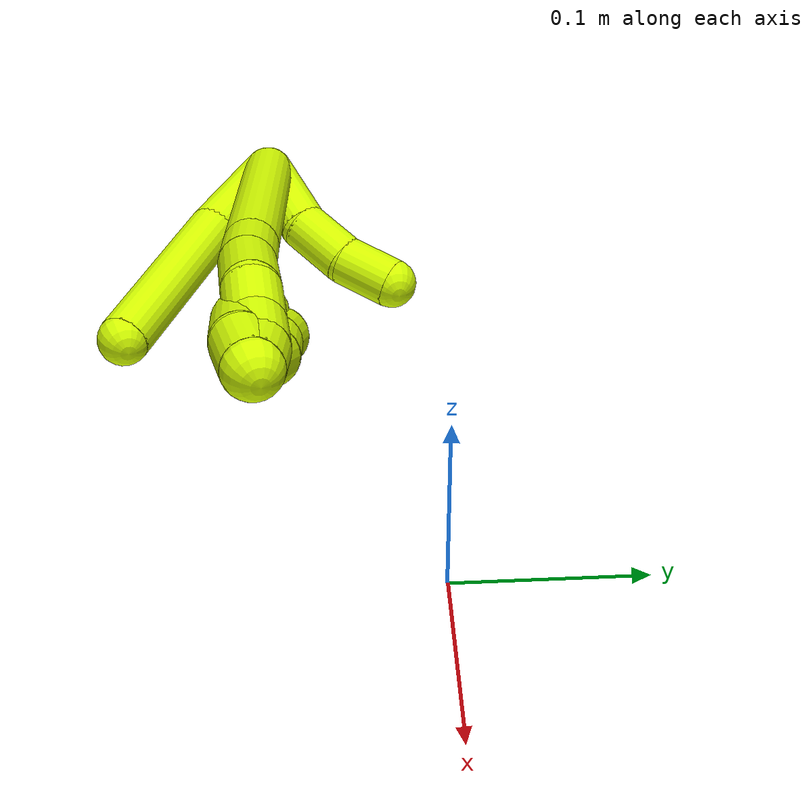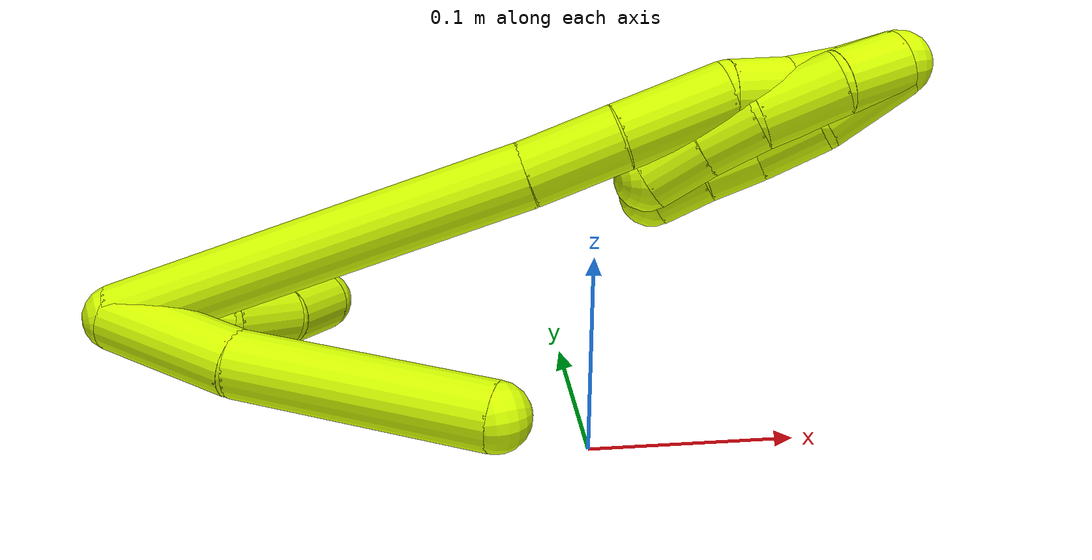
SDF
<sdf version="1.7">
 <world name="default">
  <model name="15">
   <static>0</static>
   <link name="15">
    <collision name="collision-cylinder-e_1_2_8">
     <pose>-0.003831 -0.019727 -0.017833 2.30582 -0.143072 -0.319997</pose>
     <geometry><cylinder><radius>0.0125</radius><length>0.053734</length></cylinder></geometry>
     <surface>
      <friction><ode><mu>1.16</mu><mu2>1.16</mu2><slip1>0</slip1><slip2>0</slip2></ode></friction>
      <contact><ode><kp>1e+06</kp><kd>1</kd><max_vel>0</max_vel><min_depth>0.001</min_depth></ode></contact>
     </surface>
    </collision>
    <visual name="visual-cylinder-e_1_2_8">
     <pose>-0.003831 -0.019727 -0.017833 2.30582 -0.143072 -0.319997</pose>
     <geometry><cylinder><radius>0.0125</radius><length>0.053734</length></cylinder></geometry>
     <material><ambient>0.835294 1 0 1</ambient></material>
    </visual>
    <collision name="collision-cylinder-e_2_8_6">
     <pose>-0.010407 -0.070342 -0.072478 2.44347 -0.057074 -0.156534</pose>
     <geometry><cylinder><radius>0.0125</radius><length>0.096266</length></cylinder></geometry>
     <surface>
      <friction><ode><mu>1.16</mu><mu2>1.16</mu2><slip1>0</slip1><slip2>0</slip2></ode></friction>
      <contact><ode><kp>1e+06</kp><kd>1</kd><max_vel>0</max_vel><min_depth>0.001</min_depth></ode></contact>
     </surface>
    </collision>
    <visual name="visual-cylinder-e_2_8_6">
     <pose>-0.010407 -0.070342 -0.072478 2.44347 -0.057074 -0.156534</pose>
     <geometry><cylinder><radius>0.0125</radius><length>0.096266</length></cylinder></geometry>
     <material><ambient>0.835294 1 0 1</ambient></material>
    </visual>
    <collision name="collision-cylinder-e_1_2_9">
     <pose>-0.006498 0.003924 -0.019189 -2.93988 -0.32032 2.0223</pose>
     <geometry><cylinder><radius>0.0125</radius><length>0.041272</length></cylinder></geometry>
     <surface>
      <friction><ode><mu>1.16</mu><mu2>1.16</mu2><slip1>0</slip1><slip2>0</slip2></ode></friction>
      <contact><ode><kp>1e+06</kp><kd>1</kd><max_vel>0</max_vel><min_depth>0.001</min_depth></ode></contact>
     </surface>
    </collision>
    <visual name="visual-cylinder-e_1_2_9">
     <pose>-0.006498 0.003924 -0.019189 -2.93988 -0.32032 2.0223</pose>
     <geometry><cylinder><radius>0.0125</radius><length>0.041272</length></cylinder></geometry>
     <material><ambient>0.835294 1 0 1</ambient></material>
    </visual>
    <collision name="collision-cylinder-e_2_9_10">
     <pose>-0.016975 0.015023 -0.051475 -2.64043 -0.260471 0.945929</pose>
     <geometry><cylinder><radius>0.0125</radius><length>0.030909</length></cylinder></geometry>
     <surface>
      <friction><ode><mu>1.16</mu><mu2>1.16</mu2><slip1>0</slip1><slip2>0</slip2></ode></friction>
      <contact><ode><kp>1e+06</kp><kd>1</kd><max_vel>0</max_vel><min_depth>0.001</min_depth></ode></contact>
     </surface>
    </collision>
    <visual name="visual-cylinder-e_2_9_10">
     <pose>-0.016975 0.015023 -0.051475 -2.64043 -0.260471 0.945929</pose>
     <geometry><cylinder><radius>0.0125</radius><length>0.030909</length></cylinder></geometry>
     <material><ambient>0.835294 1 0 1</ambient></material>
    </visual>
    <collision name="collision-cylinder-e_3_10_5">
     <pose>-0.023432 0.031384 -0.074718 -2.40576 -0.178971 0.457398</pose>
     <geometry><cylinder><radius>0.0125</radius><length>0.027819</length></cylinder></geometry>
     <surface>
      <friction><ode><mu>1.16</mu><mu2>1.16</mu2><slip1>0</slip1><slip2>0</slip2></ode></friction>
      <contact><ode><kp>1e+06</kp><kd>1</kd><max_vel>0</max_vel><min_depth>0.001</min_depth></ode></contact>
     </surface>
    </collision>
    <visual name="visual-cylinder-e_3_10_5">
     <pose>-0.023432 0.031384 -0.074718 -2.40576 -0.178971 0.457398</pose>
     <geometry><cylinder><radius>0.0125</radius><length>0.027819</length></cylinder></geometry>
     <material><ambient>0.835294 1 0 1</ambient></material>
    </visual>
    <collision name="collision-cylinder-e_1_2_11">
     <pose>0.024659 -0.023136 -0.072015 2.83074 0.315134 1.5847</pose>
     <geometry><cylinder><radius>0.0125</radius><length>0.159116</length></cylinder></geometry>
     <surface>
      <friction><ode><mu>1.16</mu><mu2>1.16</mu2><slip1>0</slip1><slip2>0</slip2></ode></friction>
      <contact><ode><kp>1e+06</kp><kd>1</kd><max_vel>0</max_vel><min_depth>0.001</min_depth></ode></contact>
     </surface>
    </collision>
    <visual name="visual-cylinder-e_1_2_11">
     <pose>0.024659 -0.023136 -0.072015 2.83074 0.315134 1.5847</pose>
     <geometry><cylinder><radius>0.0125</radius><length>0.159116</length></cylinder></geometry>
     <material><ambient>0.835294 1 0 1</ambient></material>
    </visual>
    <collision name="collision-cylinder-e_2_11_12">
     <pose>0.055649 -0.05105 -0.160212 2.8545 0.359044 1.7964</pose>
     <geometry><cylinder><radius>0.0125</radius><length>0.036043</length></cylinder></geometry>
     <surface>
      <friction><ode><mu>1.16</mu><mu2>1.16</mu2><slip1>0</slip1><slip2>0</slip2></ode></friction>
      <contact><ode><kp>1e+06</kp><kd>1</kd><max_vel>0</max_vel><min_depth>0.001</min_depth></ode></contact>
     </surface>
    </collision>
    <visual name="visual-cylinder-e_2_11_12">
     <pose>0.055649 -0.05105 -0.160212 2.8545 0.359044 1.7964</pose>
     <geometry><cylinder><radius>0.0125</radius><length>0.036043</length></cylinder></geometry>
     <material><ambient>0.835294 1 0 1</ambient></material>
    </visual>
    <collision name="collision-cylinder-e_3_12_13">
     <pose>0.068627 -0.059862 -0.195578 2.93431 0.326819 2.01601</pose>
     <geometry><cylinder><radius>0.0125</radius><length>0.0414</length></cylinder></geometry>
     <surface>
      <friction><ode><mu>1.16</mu><mu2>1.16</mu2><slip1>0</slip1><slip2>0</slip2></ode></friction>
      <contact><ode><kp>1e+06</kp><kd>1</kd><max_vel>0</max_vel><min_depth>0.001</min_depth></ode></contact>
     </surface>
    </collision>
    <visual name="visual-cylinder-e_3_12_13">
     <pose>0.068627 -0.059862 -0.195578 2.93431 0.326819 2.01601</pose>
     <geometry><cylinder><radius>0.0125</radius><length>0.0414</length></cylinder></geometry>
     <material><ambient>0.835294 1 0 1</ambient></material>
    </visual>
    <collision name="collision-cylinder-e_4_13_14">
     <pose>0.075089 -0.066086 -0.225962 2.94851 -0.016038 -0.165232</pose>
     <geometry><cylinder><radius>0.0125</radius><length>0.022826</length></cylinder></geometry>
     <surface>
      <friction><ode><mu>1.16</mu><mu2>1.16</mu2><slip1>0</slip1><slip2>0</slip2></ode></friction>
      <contact><ode><kp>1e+06</kp><kd>1</kd><max_vel>0</max_vel><min_depth>0.001</min_depth></ode></contact>
     </surface>
    </collision>
    <visual name="visual-cylinder-e_4_13_14">
     <pose>0.075089 -0.066086 -0.225962 2.94851 -0.016038 -0.165232</pose>
     <geometry><cylinder><radius>0.0125</radius><length>0.022826</length></cylinder></geometry>
     <material><ambient>0.835294 1 0 1</ambient></material>
    </visual>
    <collision name="collision-cylinder-e_5_14_15">
     <pose>0.076183 -0.070251 -0.24699 2.94333 0.126685 1.13543</pose>
     <geometry><cylinder><radius>0.0125</radius><length>0.020212</length></cylinder></geometry>
     <surface>
      <friction><ode><mu>1.16</mu><mu2>1.16</mu2><slip1>0</slip1><slip2>0</slip2></ode></friction>
      <contact><ode><kp>1e+06</kp><kd>1</kd><max_vel>0</max_vel><min_depth>0.001</min_depth></ode></contact>
     </surface>
    </collision>
    <visual name="visual-cylinder-e_5_14_15">
     <pose>0.076183 -0.070251 -0.24699 2.94333 0.126685 1.13543</pose>
     <geometry><cylinder><radius>0.0125</radius><length>0.020212</length></cylinder></geometry>
     <material><ambient>0.835294 1 0 1</ambient></material>
    </visual>
    <collision name="collision-cylinder-e_6_15_1">
     <pose>0.080333 -0.075757 -0.265948 2.77243 0.285439 1.3119</pose>
     <geometry><cylinder><radius>0.0125</radius><length>0.020403</length></cylinder></geometry>
     <surface>
      <friction><ode><mu>1.16</mu><mu2>1.16</mu2><slip1>0</slip1><slip2>0</slip2></ode></friction>
      <contact><ode><kp>1e+06</kp><kd>1</kd><max_vel>0</max_vel><min_depth>0.001</min_depth></ode></contact>
     </surface>
    </collision>
    <visual name="visual-cylinder-e_6_15_1">
     <pose>0.080333 -0.075757 -0.265948 2.77243 0.285439 1.3119</pose>
     <geometry><cylinder><radius>0.0125</radius><length>0.020403</length></cylinder></geometry>
     <material><ambient>0.835294 1 0 1</ambient></material>
    </visual>
    <collision name="collision-cylinder-e_1_1_16">
     <pose>0.080763 -0.078533 -0.263351 -0.064407 -0.204895 0.006624</pose>
     <geometry><cylinder><radius>0.0125</radius><length>0.024004</length></cylinder></geometry>
     <surface>
      <friction><ode><mu>1.16</mu><mu2>1.16</mu2><slip1>0</slip1><slip2>0</slip2></ode></friction>
      <contact><ode><kp>1e+06</kp><kd>1</kd><max_vel>0</max_vel><min_depth>0.001</min_depth></ode></contact>
     </surface>
    </collision>
    <visual name="visual-cylinder-e_1_1_16">
     <pose>0.080763 -0.078533 -0.263351 -0.064407 -0.204895 0.006624</pose>
     <geometry><cylinder><radius>0.0125</radius><length>0.024004</length></cylinder></geometry>
     <material><ambient>0.835294 1 0 1</ambient></material>
    </visual>
    <collision name="collision-cylinder-e_2_16_17">
     <pose>0.072841 -0.074033 -0.237439 -0.258066 -0.357506 0.04688</pose>
     <geometry><cylinder><radius>0.0125</radius><length>0.031324</length></cylinder></geometry>
     <surface>
      <friction><ode><mu>1.16</mu><mu2>1.16</mu2><slip1>0</slip1><slip2>0</slip2></ode></friction>
      <contact><ode><kp>1e+06</kp><kd>1</kd><max_vel>0</max_vel><min_depth>0.001</min_depth></ode></contact>
     </surface>
    </collision>
    <visual name="visual-cylinder-e_2_16_17">
     <pose>0.072841 -0.074033 -0.237439 -0.258066 -0.357506 0.04688</pose>
     <geometry><cylinder><radius>0.0125</radius><length>0.031324</length></cylinder></geometry>
     <material><ambient>0.835294 1 0 1</ambient></material>
    </visual>
    <collision name="collision-cylinder-e_3_17_18">
     <pose>0.062081 -0.066242 -0.214445 -0.430622 -0.498732 0.111277</pose>
     <geometry><cylinder><radius>0.0125</radius><length>0.022075</length></cylinder></geometry>
     <surface>
      <friction><ode><mu>1.16</mu><mu2>1.16</mu2><slip1>0</slip1><slip2>0</slip2></ode></friction>
      <contact><ode><kp>1e+06</kp><kd>1</kd><max_vel>0</max_vel><min_depth>0.001</min_depth></ode></contact>
     </surface>
    </collision>
    <visual name="visual-cylinder-e_3_17_18">
     <pose>0.062081 -0.066242 -0.214445 -0.430622 -0.498732 0.111277</pose>
     <geometry><cylinder><radius>0.0125</radius><length>0.022075</length></cylinder></geometry>
     <material><ambient>0.835294 1 0 1</ambient></material>
    </visual>
    <collision name="collision-cylinder-e_4_18_4">
     <pose>0.050658 -0.058201 -0.197037 -0.434911 -0.574884 0.130453</pose>
     <geometry><cylinder><radius>0.0125</radius><length>0.022598</length></cylinder></geometry>
     <surface>
      <friction><ode><mu>1.16</mu><mu2>1.16</mu2><slip1>0</slip1><slip2>0</slip2></ode></friction>
      <contact><ode><kp>1e+06</kp><kd>1</kd><max_vel>0</max_vel><min_depth>0.001</min_depth></ode></contact>
     </surface>
    </collision>
    <visual name="visual-cylinder-e_4_18_4">
     <pose>0.050658 -0.058201 -0.197037 -0.434911 -0.574884 0.130453</pose>
     <geometry><cylinder><radius>0.0125</radius><length>0.022598</length></cylinder></geometry>
     <material><ambient>0.835294 1 0 1</ambient></material>
    </visual>
    <collision name="collision-cylinder-e_1_1_19">
     <pose>0.073824 -0.075725 -0.261664 -0.259771 -0.594391 0.079967</pose>
     <geometry><cylinder><radius>0.0125</radius><length>0.033505</length></cylinder></geometry>
     <surface>
      <friction><ode><mu>1.16</mu><mu2>1.16</mu2><slip1>0</slip1><slip2>0</slip2></ode></friction>
      <contact><ode><kp>1e+06</kp><kd>1</kd><max_vel>0</max_vel><min_depth>0.001</min_depth></ode></contact>
     </surface>
    </collision>
    <visual name="visual-cylinder-e_1_1_19">
     <pose>0.073824 -0.075725 -0.261664 -0.259771 -0.594391 0.079967</pose>
     <geometry><cylinder><radius>0.0125</radius><length>0.033505</length></cylinder></geometry>
     <material><ambient>0.835294 1 0 1</ambient></material>
    </visual>
    <collision name="collision-cylinder-e_2_19_20">
     <pose>0.058235 -0.06655 -0.238447 -0.51974 -0.502492 0.136277</pose>
     <geometry><cylinder><radius>0.0125</radius><length>0.025776</length></cylinder></geometry>
     <surface>
      <friction><ode><mu>1.16</mu><mu2>1.16</mu2><slip1>0</slip1><slip2>0</slip2></ode></friction>
      <contact><ode><kp>1e+06</kp><kd>1</kd><max_vel>0</max_vel><min_depth>0.001</min_depth></ode></contact>
     </surface>
    </collision>
    <visual name="visual-cylinder-e_2_19_20">
     <pose>0.058235 -0.06655 -0.238447 -0.51974 -0.502492 0.136277</pose>
     <geometry><cylinder><radius>0.0125</radius><length>0.025776</length></cylinder></geometry>
     <material><ambient>0.835294 1 0 1</ambient></material>
    </visual>
    <collision name="collision-cylinder-e_3_20_21">
     <pose>0.048286 -0.057946 -0.21952 -0.317141 -0.371577 0.060095</pose>
     <geometry><cylinder><radius>0.0125</radius><length>0.020612</length></cylinder></geometry>
     <surface>
      <friction><ode><mu>1.16</mu><mu2>1.16</mu2><slip1>0</slip1><slip2>0</slip2></ode></friction>
      <contact><ode><kp>1e+06</kp><kd>1</kd><max_vel>0</max_vel><min_depth>0.001</min_depth></ode></contact>
     </surface>
    </collision>
    <visual name="visual-cylinder-e_3_20_21">
     <pose>0.048286 -0.057946 -0.21952 -0.317141 -0.371577 0.060095</pose>
     <geometry><cylinder><radius>0.0125</radius><length>0.020612</length></cylinder></geometry>
     <material><ambient>0.835294 1 0 1</ambient></material>
    </visual>
    <collision name="collision-cylinder-e_4_21_3">
     <pose>0.039882 -0.051256 -0.202292 -0.427803 -0.482206 0.106724</pose>
     <geometry><cylinder><radius>0.0125</radius><length>0.020107</length></cylinder></geometry>
     <surface>
      <friction><ode><mu>1.16</mu><mu2>1.16</mu2><slip1>0</slip1><slip2>0</slip2></ode></friction>
      <contact><ode><kp>1e+06</kp><kd>1</kd><max_vel>0</max_vel><min_depth>0.001</min_depth></ode></contact>
     </surface>
    </collision>
    <visual name="visual-cylinder-e_4_21_3">
     <pose>0.039882 -0.051256 -0.202292 -0.427803 -0.482206 0.106724</pose>
     <geometry><cylinder><radius>0.0125</radius><length>0.020107</length></cylinder></geometry>
     <material><ambient>0.835294 1 0 1</ambient></material>
    </visual>
    <collision name="collision-sphere-3">
     <pose>0.03522 -0.04756 -0.194187 0 -0 0</pose>
     <geometry><sphere><radius>0.0125</radius></sphere></geometry>
     <surface>
      <friction><ode><mu>1.16</mu><mu2>1.16</mu2><slip1>0</slip1><slip2>0</slip2></ode></friction>
      <contact><ode><kp>1e+06</kp><kd>1</kd><max_vel>0</max_vel><min_depth>0.001</min_depth></ode></contact>
     </surface>
    </collision>
    <visual name="visual-sphere-3">
     <pose>0.03522 -0.04756 -0.194187 0 -0 0</pose>
     <geometry><sphere><radius>0.0125</radius></sphere></geometry>
     <material><ambient>0.835294 1 0 1</ambient></material>
    </visual>
    <collision name="collision-sphere-21">
     <pose>0.044544 -0.054951 -0.210396 0 -0 0</pose>
     <geometry><sphere><radius>0.0125</radius></sphere></geometry>
     <surface>
      <friction><ode><mu>1.16</mu><mu2>1.16</mu2><slip1>0</slip1><slip2>0</slip2></ode></friction>
      <contact><ode><kp>1e+06</kp><kd>1</kd><max_vel>0</max_vel><min_depth>0.001</min_depth></ode></contact>
     </surface>
    </collision>
    <visual name="visual-sphere-21">
     <pose>0.044544 -0.054951 -0.210396 0 -0 0</pose>
     <geometry><sphere><radius>0.0125</radius></sphere></geometry>
     <material><ambient>0.835294 1 0 1</ambient></material>
    </visual>
    <collision name="collision-sphere-20">
     <pose>0.052028 -0.06094 -0.228643 0 -0 0</pose>
     <geometry><sphere><radius>0.0125</radius></sphere></geometry>
     <surface>
      <friction><ode><mu>1.16</mu><mu2>1.16</mu2><slip1>0</slip1><slip2>0</slip2></ode></friction>
      <contact><ode><kp>1e+06</kp><kd>1</kd><max_vel>0</max_vel><min_depth>0.001</min_depth></ode></contact>
     </surface>
    </collision>
    <visual name="visual-sphere-20">
     <pose>0.052028 -0.06094 -0.228643 0 -0 0</pose>
     <geometry><sphere><radius>0.0125</radius></sphere></geometry>
     <material><ambient>0.835294 1 0 1</ambient></material>
    </visual>
    <collision name="collision-sphere-19">
     <pose>0.064442 -0.07216 -0.24825 0 -0 0</pose>
     <geometry><sphere><radius>0.0125</radius></sphere></geometry>
     <surface>
      <friction><ode><mu>1.16</mu><mu2>1.16</mu2><slip1>0</slip1><slip2>0</slip2></ode></friction>
      <contact><ode><kp>1e+06</kp><kd>1</kd><max_vel>0</max_vel><min_depth>0.001</min_depth></ode></contact>
     </surface>
    </collision>
    <visual name="visual-sphere-19">
     <pose>0.064442 -0.07216 -0.24825 0 -0 0</pose>
     <geometry><sphere><radius>0.0125</radius></sphere></geometry>
     <material><ambient>0.835294 1 0 1</ambient></material>
    </visual>
    <collision name="collision-sphere-5">
     <pose>-0.025908 0.040572 -0.084864 0 -0 0</pose>
     <geometry><sphere><radius>0.0125</radius></sphere></geometry>
     <surface>
      <friction><ode><mu>1.16</mu><mu2>1.16</mu2><slip1>0</slip1><slip2>0</slip2></ode></friction>
      <contact><ode><kp>1e+06</kp><kd>1</kd><max_vel>0</max_vel><min_depth>0.001</min_depth></ode></contact>
     </surface>
    </collision>
    <visual name="visual-sphere-5">
     <pose>-0.025908 0.040572 -0.084864 0 -0 0</pose>
     <geometry><sphere><radius>0.0125</radius></sphere></geometry>
     <material><ambient>0.835294 1 0 1</ambient></material>
    </visual>
    <collision name="collision-sphere-10">
     <pose>-0.020955 0.022197 -0.064572 0 -0 0</pose>
     <geometry><sphere><radius>0.0125</radius></sphere></geometry>
     <surface>
      <friction><ode><mu>1.16</mu><mu2>1.16</mu2><slip1>0</slip1><slip2>0</slip2></ode></friction>
      <contact><ode><kp>1e+06</kp><kd>1</kd><max_vel>0</max_vel><min_depth>0.001</min_depth></ode></contact>
     </surface>
    </collision>
    <visual name="visual-sphere-10">
     <pose>-0.020955 0.022197 -0.064572 0 -0 0</pose>
     <geometry><sphere><radius>0.0125</radius></sphere></geometry>
     <material><ambient>0.835294 1 0 1</ambient></material>
    </visual>
    <collision name="collision-sphere-6">
     <pose>-0.013153 -0.101231 -0.10929 0 -0 0</pose>
     <geometry><sphere><radius>0.0125</radius></sphere></geometry>
     <surface>
      <friction><ode><mu>1.16</mu><mu2>1.16</mu2><slip1>0</slip1><slip2>0</slip2></ode></friction>
      <contact><ode><kp>1e+06</kp><kd>1</kd><max_vel>0</max_vel><min_depth>0.001</min_depth></ode></contact>
     </surface>
    </collision>
    <visual name="visual-sphere-6">
     <pose>-0.013153 -0.101231 -0.10929 0 -0 0</pose>
     <geometry><sphere><radius>0.0125</radius></sphere></geometry>
     <material><ambient>0.835294 1 0 1</ambient></material>
    </visual>
    <collision name="collision-sphere-9">
     <pose>-0.012995 0.007848 -0.038378 0 -0 0</pose>
     <geometry><sphere><radius>0.0125</radius></sphere></geometry>
     <surface>
      <friction><ode><mu>1.16</mu><mu2>1.16</mu2><slip1>0</slip1><slip2>0</slip2></ode></friction>
      <contact><ode><kp>1e+06</kp><kd>1</kd><max_vel>0</max_vel><min_depth>0.001</min_depth></ode></contact>
     </surface>
    </collision>
    <visual name="visual-sphere-9">
     <pose>-0.012995 0.007848 -0.038378 0 -0 0</pose>
     <geometry><sphere><radius>0.0125</radius></sphere></geometry>
     <material><ambient>0.835294 1 0 1</ambient></material>
    </visual>
    <collision name="collision-sphere-2">
     <geometry><sphere><radius>0.0125</radius></sphere></geometry>
     <surface>
      <friction><ode><mu>1.16</mu><mu2>1.16</mu2><slip1>0</slip1><slip2>0</slip2></ode></friction>
      <contact><ode><kp>1e+06</kp><kd>1</kd><max_vel>0</max_vel><min_depth>0.001</min_depth></ode></contact>
     </surface>
    </collision>
    <visual name="visual-sphere-2">
     <geometry><sphere><radius>0.0125</radius></sphere></geometry>
     <material><ambient>0.835294 1 0 1</ambient></material>
    </visual>
    <collision name="collision-sphere-8">
     <pose>-0.007662 -0.039453 -0.035666 0 -0 0</pose>
     <geometry><sphere><radius>0.0125</radius></sphere></geometry>
     <surface>
      <friction><ode><mu>1.16</mu><mu2>1.16</mu2><slip1>0</slip1><slip2>0</slip2></ode></friction>
      <contact><ode><kp>1e+06</kp><kd>1</kd><max_vel>0</max_vel><min_depth>0.001</min_depth></ode></contact>
     </surface>
    </collision>
    <visual name="visual-sphere-8">
     <pose>-0.007662 -0.039453 -0.035666 0 -0 0</pose>
     <geometry><sphere><radius>0.0125</radius></sphere></geometry>
     <material><ambient>0.835294 1 0 1</ambient></material>
    </visual>
    <collision name="collision-sphere-11">
     <pose>0.049317 -0.046272 -0.14403 0 -0 0</pose>
     <geometry><sphere><radius>0.0125</radius></sphere></geometry>
     <surface>
      <friction><ode><mu>1.16</mu><mu2>1.16</mu2><slip1>0</slip1><slip2>0</slip2></ode></friction>
      <contact><ode><kp>1e+06</kp><kd>1</kd><max_vel>0</max_vel><min_depth>0.001</min_depth></ode></contact>
     </surface>
    </collision>
    <visual name="visual-sphere-11">
     <pose>0.049317 -0.046272 -0.14403 0 -0 0</pose>
     <geometry><sphere><radius>0.0125</radius></sphere></geometry>
     <material><ambient>0.835294 1 0 1</ambient></material>
    </visual>
    <collision name="collision-sphere-12">
     <pose>0.061982 -0.055828 -0.176394 0 -0 0</pose>
     <geometry><sphere><radius>0.0125</radius></sphere></geometry>
     <surface>
      <friction><ode><mu>1.16</mu><mu2>1.16</mu2><slip1>0</slip1><slip2>0</slip2></ode></friction>
      <contact><ode><kp>1e+06</kp><kd>1</kd><max_vel>0</max_vel><min_depth>0.001</min_depth></ode></contact>
     </surface>
    </collision>
    <visual name="visual-sphere-12">
     <pose>0.061982 -0.055828 -0.176394 0 -0 0</pose>
     <geometry><sphere><radius>0.0125</radius></sphere></geometry>
     <material><ambient>0.835294 1 0 1</ambient></material>
    </visual>
    <collision name="collision-sphere-13">
     <pose>0.075273 -0.063897 -0.214763 0 -0 0</pose>
     <geometry><sphere><radius>0.0125</radius></sphere></geometry>
     <surface>
      <friction><ode><mu>1.16</mu><mu2>1.16</mu2><slip1>0</slip1><slip2>0</slip2></ode></friction>
      <contact><ode><kp>1e+06</kp><kd>1</kd><max_vel>0</max_vel><min_depth>0.001</min_depth></ode></contact>
     </surface>
    </collision>
    <visual name="visual-sphere-13">
     <pose>0.075273 -0.063897 -0.214763 0 -0 0</pose>
     <geometry><sphere><radius>0.0125</radius></sphere></geometry>
     <material><ambient>0.835294 1 0 1</ambient></material>
    </visual>
    <collision name="collision-sphere-14">
     <pose>0.074906 -0.068276 -0.237161 0 -0 0</pose>
     <geometry><sphere><radius>0.0125</radius></sphere></geometry>
     <surface>
      <friction><ode><mu>1.16</mu><mu2>1.16</mu2><slip1>0</slip1><slip2>0</slip2></ode></friction>
      <contact><ode><kp>1e+06</kp><kd>1</kd><max_vel>0</max_vel><min_depth>0.001</min_depth></ode></contact>
     </surface>
    </collision>
    <visual name="visual-sphere-14">
     <pose>0.074906 -0.068276 -0.237161 0 -0 0</pose>
     <geometry><sphere><radius>0.0125</radius></sphere></geometry>
     <material><ambient>0.835294 1 0 1</ambient></material>
    </visual>
    <collision name="collision-sphere-15">
     <pose>0.07746 -0.072225 -0.256819 0 -0 0</pose>
     <geometry><sphere><radius>0.0125</radius></sphere></geometry>
     <surface>
      <friction><ode><mu>1.16</mu><mu2>1.16</mu2><slip1>0</slip1><slip2>0</slip2></ode></friction>
      <contact><ode><kp>1e+06</kp><kd>1</kd><max_vel>0</max_vel><min_depth>0.001</min_depth></ode></contact>
     </surface>
    </collision>
    <visual name="visual-sphere-15">
     <pose>0.07746 -0.072225 -0.256819 0 -0 0</pose>
     <geometry><sphere><radius>0.0125</radius></sphere></geometry>
     <material><ambient>0.835294 1 0 1</ambient></material>
    </visual>
    <collision name="collision-sphere-1">
     <pose>0.083205 -0.07929 -0.275077 0 -0 0</pose>
     <geometry><sphere><radius>0.0125</radius></sphere></geometry>
     <surface>
      <friction><ode><mu>1.16</mu><mu2>1.16</mu2><slip1>0</slip1><slip2>0</slip2></ode></friction>
      <contact><ode><kp>1e+06</kp><kd>1</kd><max_vel>0</max_vel><min_depth>0.001</min_depth></ode></contact>
     </surface>
    </collision>
    <visual name="visual-sphere-1">
     <pose>0.083205 -0.07929 -0.275077 0 -0 0</pose>
     <geometry><sphere><radius>0.0125</radius></sphere></geometry>
     <material><ambient>0.835294 1 0 1</ambient></material>
    </visual>
    <collision name="collision-sphere-18">
     <pose>0.056801 -0.062196 -0.205637 0 -0 0</pose>
     <geometry><sphere><radius>0.0125</radius></sphere></geometry>
     <surface>
      <friction><ode><mu>1.16</mu><mu2>1.16</mu2><slip1>0</slip1><slip2>0</slip2></ode></friction>
      <contact><ode><kp>1e+06</kp><kd>1</kd><max_vel>0</max_vel><min_depth>0.001</min_depth></ode></contact>
     </surface>
    </collision>
    <visual name="visual-sphere-18">
     <pose>0.056801 -0.062196 -0.205637 0 -0 0</pose>
     <geometry><sphere><radius>0.0125</radius></sphere></geometry>
     <material><ambient>0.835294 1 0 1</ambient></material>
    </visual>
    <collision name="collision-sphere-16">
     <pose>0.078321 -0.077777 -0.251624 0 -0 0</pose>
     <geometry><sphere><radius>0.0125</radius></sphere></geometry>
     <surface>
      <friction><ode><mu>1.16</mu><mu2>1.16</mu2><slip1>0</slip1><slip2>0</slip2></ode></friction>
      <contact><ode><kp>1e+06</kp><kd>1</kd><max_vel>0</max_vel><min_depth>0.001</min_depth></ode></contact>
     </surface>
    </collision>
    <visual name="visual-sphere-16">
     <pose>0.078321 -0.077777 -0.251624 0 -0 0</pose>
     <geometry><sphere><radius>0.0125</radius></sphere></geometry>
     <material><ambient>0.835294 1 0 1</ambient></material>
    </visual>
    <collision name="collision-sphere-17">
     <pose>0.06736 -0.070288 -0.223253 0 -0 0</pose>
     <geometry><sphere><radius>0.0125</radius></sphere></geometry>
     <surface>
      <friction><ode><mu>1.16</mu><mu2>1.16</mu2><slip1>0</slip1><slip2>0</slip2></ode></friction>
      <contact><ode><kp>1e+06</kp><kd>1</kd><max_vel>0</max_vel><min_depth>0.001</min_depth></ode></contact>
     </surface>
    </collision>
    <visual name="visual-sphere-17">
     <pose>0.06736 -0.070288 -0.223253 0 -0 0</pose>
     <geometry><sphere><radius>0.0125</radius></sphere></geometry>
     <material><ambient>0.835294 1 0 1</ambient></material>
    </visual>
    <collision name="collision-sphere-4">
     <pose>0.044514 -0.054205 -0.188437 0 -0 0</pose>
     <geometry><sphere><radius>0.0125</radius></sphere></geometry>
     <surface>
      <friction><ode><mu>1.16</mu><mu2>1.16</mu2><slip1>0</slip1><slip2>0</slip2></ode></friction>
      <contact><ode><kp>1e+06</kp><kd>1</kd><max_vel>0</max_vel><min_depth>0.001</min_depth></ode></contact>
     </surface>
    </collision>
    <visual name="visual-sphere-4">
     <pose>0.044514 -0.054205 -0.188437 0 -0 0</pose>
     <geometry><sphere><radius>0.0125</radius></sphere></geometry>
     <material><ambient>0.835294 1 0 1</ambient></material>
    </visual>
    <inertial>
     <pose>0.031357 -0.04302 -0.133005 0 -0 0</pose>
     <mass>0.75</mass>
     <inertia>
      <ixx>0.000434</ixx>
      <ixy>0</ixy>
      <ixz>0</ixz>
      <iyy>0.000318</iyy>
      <iyz>0</iyz>
      <izz>3.9e-05</izz>
     </inertia>
    </inertial>
   </link>
   <pose>-0.191703 -0.082345 0.121066 -1.98 -1.55011 2.25528</pose>
  </model>
 </world>
</sdf>
